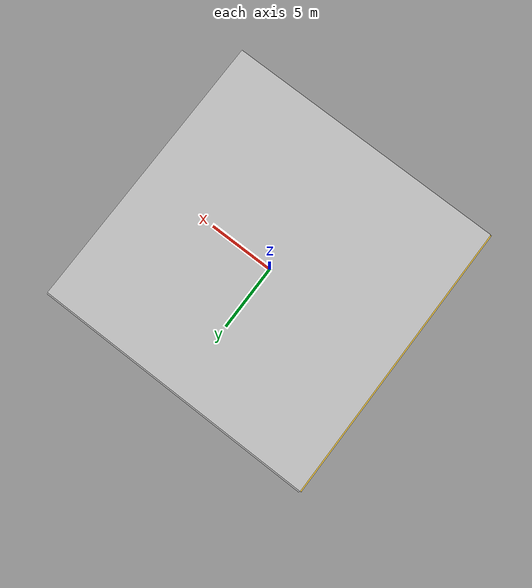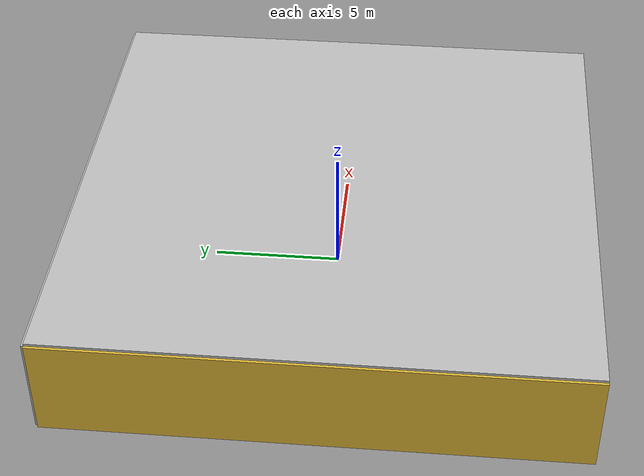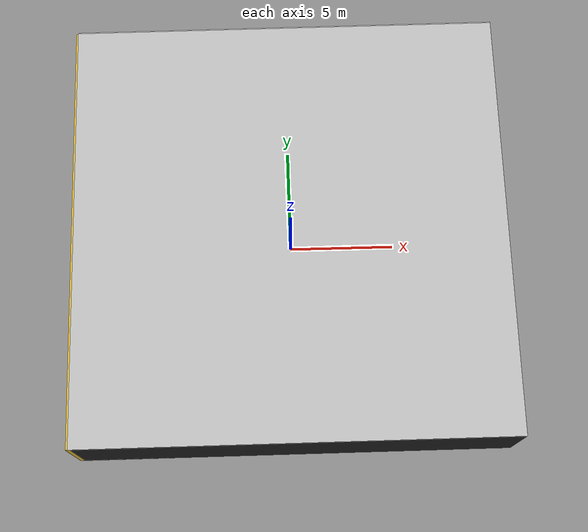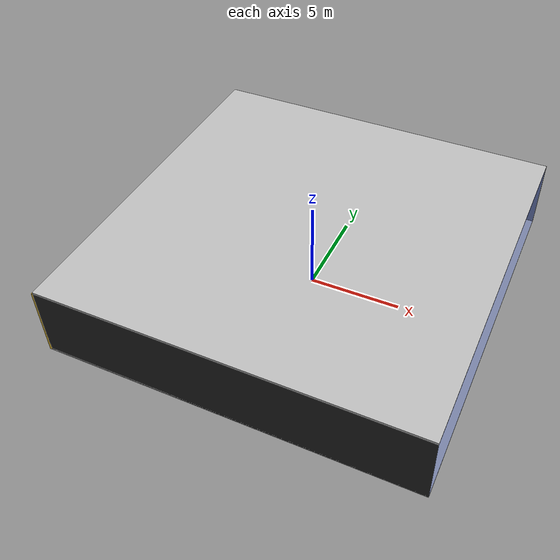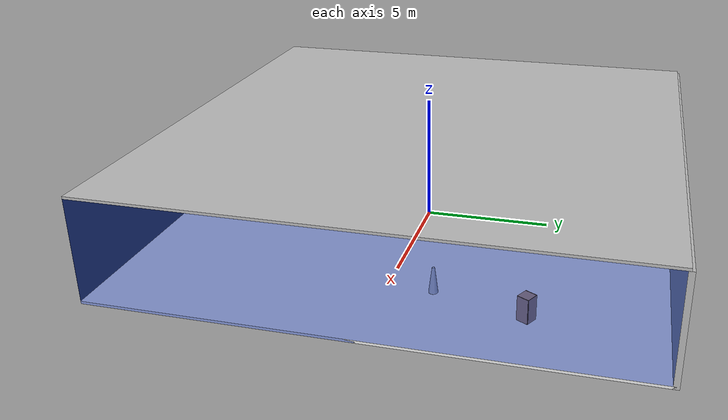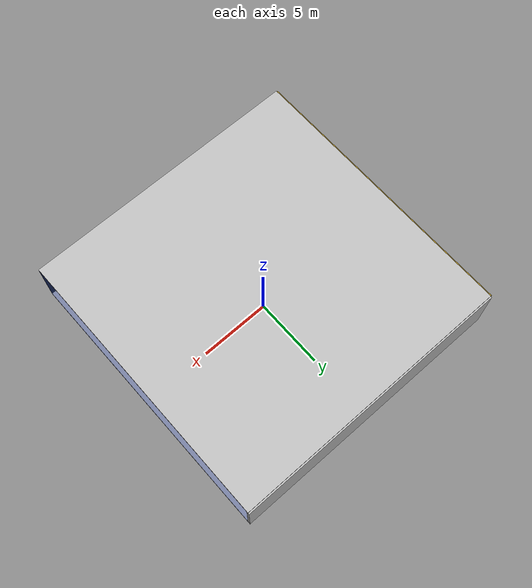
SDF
<sdf version="1.4">
 <world name="default">
  <physics type="ode">
   <max_step_size>0.001</max_step_size>
   <real_time_factor>1</real_time_factor>
   <real_time_update_rate>1000</real_time_update_rate>
   <gravity>0 0 -9.8</gravity>
  </physics>
  <scene><ambient>0.4 0.4 0.4 1</ambient><background>0.7 0.7 0.7 1</background><shadows>1</shadows></scene>
  <model name="Surrounding">
   <static>1</static>
   <link name="Ceiling">
    <collision name="Ceiling_Collision"><geometry><box><size>20 20 0.1</size></box></geometry></collision>
    <visual name="Ceiling_Visual">
     <geometry><box><size>20 20 0.1</size></box></geometry>
     <material>
      <script><uri>file://media/materials/scripts/gazebo.material</uri><name>Gazebo/JointAnchor</name></script>
     </material>
    </visual>
    <pose>0 0 4.05 0 0 0</pose>
   </link>
   <link name="Wall_South">
    <collision name="Wall_South_Collision">
     <geometry><box><size>20 0 4</size></box></geometry>
     <pose>0 0 2 0 -0 0</pose>
    </collision>
    <visual name="Wall_South_Visual">
     <pose>0 0 2 0 -0 0</pose>
     <geometry><box><size>20 0 4</size></box></geometry>
     <material>
      <script><uri>file://media/materials/scripts/gazebo.material</uri><name>Gazebo/Black</name></script>
     </material>
    </visual>
    <velocity_decay><linear>0</linear><angular>0</angular></velocity_decay>
    <pose>0 -10 0 0 -0 0</pose>
   </link>
   <link name="Wall_East">
    <collision name="Wall_21_Collision">
     <geometry><box><size>20 0 4</size></box></geometry>
     <pose>0 0 2 0 -0 0</pose>
    </collision>
    <visual name="Wall_21_Visual">
     <pose>0 0 2 0 -0 0</pose>
     <geometry><box><size>20 0 4</size></box></geometry>
     <material>
      <script><uri>file://media/materials/scripts/gazebo.material</uri><name>Gazebo/BlueTransparent</name></script>
     </material>
    </visual>
    <velocity_decay><linear>0</linear><angular>0</angular></velocity_decay>
    <pose>10 0 0 0 -0 1.5708</pose>
   </link>
   <link name="Wall_North">
    <collision name="Wall_22_Collision">
     <geometry><box><size>20 0.2 4</size></box></geometry>
     <pose>0 0 2 0 -0 0</pose>
    </collision>
    <visual name="Wall_22_Visual">
     <pose>0 0 2 0 -0 0</pose>
     <geometry><box><size>20 0.2 4</size></box></geometry>
     <material>
      <script><uri>file://media/materials/scripts/gazebo.material</uri><name>Gazebo/Pioneer2Body</name></script>
     </material>
    </visual>
    <velocity_decay><linear>0</linear><angular>0</angular></velocity_decay>
    <pose>0 10 0 0 -0 0</pose>
   </link>
   <link name="Wall_West">
    <collision name="Wall_23_Collision">
     <geometry><box><size>20 0.2 4</size></box></geometry>
     <pose>0 0 2 0 -0 0</pose>
    </collision>
    <visual name="Wall_23_Visual">
     <pose>0 0 2 0 -0 0</pose>
     <geometry><box><size>20 0.2 4</size></box></geometry>
     <material>
      <script><uri>file://media/materials/scripts/gazebo.material</uri><name>Gazebo/Gold</name></script>
     </material>
    </visual>
    <velocity_decay><linear>0</linear><angular>0</angular></velocity_decay>
    <pose>-10 0 0 0 0 -1.5708</pose>
   </link>
   <link name="Ground_link">
    <collision name="collision">
     <pose>0 0 .05 0 -0 0</pose>
     <geometry><box><size>20 20 0.1</size></box></geometry>
    </collision>
    <visual name="visual">
     <pose>0 0 .05 0 -0 0</pose>
     <geometry><box><size>20 20 0.1</size></box></geometry>
     <material>
      <script><uri>file://media/materials/scripts/gazebo.material</uri><name>Gazebo/White</name></script>
     </material>
    </visual>
   </link>
   <static>1</static>
  </model>
  <spherical_coordinates>
   <surface_model>EARTH_WGS84</surface_model>
   <latitude_deg>0</latitude_deg>
   <longitude_deg>0</longitude_deg>
   <elevation>0</elevation>
   <heading_deg>0</heading_deg>
  </spherical_coordinates>
  <light name="lightball_0" type="diffuse">
   <diffuse>0.8 0.8 0.8 1</diffuse>
   <specular>0.2 0.2 0.2 1</specular>
   <attenuation>
    <range>100</range>
    <constant>0.7</constant>
    <linear>0.01</linear>
    <quadratic>0.001</quadratic>
   </attenuation>
   <direction>-0.5 0.1 -0.9</direction>
   <pose>3.01395506233 -4.20817588152 3.11195708385 0 0 0</pose>
  </light>
  <light name="lightball_1" type="diffuse">
   <diffuse>0.8 0.8 0.8 1</diffuse>
   <specular>0.2 0.2 0.2 1</specular>
   <attenuation>
    <range>100</range>
    <constant>0.7</constant>
    <linear>0.01</linear>
    <quadratic>0.001</quadratic>
   </attenuation>
   <direction>-0.5 0.1 -0.9</direction>
   <pose>9.0937242143 4.74278751778 1.92562891523 0 0 0</pose>
  </light>
  <light name="lightball_2" type="diffuse">
   <diffuse>0.8 0.8 0.8 1</diffuse>
   <specular>0.2 0.2 0.2 1</specular>
   <attenuation>
    <range>100</range>
    <constant>0.7</constant>
    <linear>0.01</linear>
    <quadratic>0.001</quadratic>
   </attenuation>
   <direction>-0.5 0.1 -0.9</direction>
   <pose>8.76747268517 -6.21961790635 2.12507746406 0 0 0</pose>
  </light>
  <light name="lightball_3" type="diffuse">
   <diffuse>0.8 0.8 0.8 1</diffuse>
   <specular>0.2 0.2 0.2 1</specular>
   <attenuation>
    <range>100</range>
    <constant>0.7</constant>
    <linear>0.01</linear>
    <quadratic>0.001</quadratic>
   </attenuation>
   <direction>-0.5 0.1 -0.9</direction>
   <pose>-4.34344558216 -2.11320820244 3.28668872014 0 0 0</pose>
  </light>
  <light name="lightball_4" type="diffuse">
   <diffuse>0.8 0.8 0.8 1</diffuse>
   <specular>0.2 0.2 0.2 1</specular>
   <attenuation>
    <range>100</range>
    <constant>0.7</constant>
    <linear>0.01</linear>
    <quadratic>0.001</quadratic>
   </attenuation>
   <direction>-0.5 0.1 -0.9</direction>
   <pose>-3.07760071025 2.04764423739 3.55953980478 0 0 0</pose>
  </light>
  <light name="lightball_5" type="diffuse">
   <diffuse>0.8 0.8 0.8 1</diffuse>
   <specular>0.2 0.2 0.2 1</specular>
   <attenuation>
    <range>100</range>
    <constant>0.7</constant>
    <linear>0.01</linear>
    <quadratic>0.001</quadratic>
   </attenuation>
   <direction>-0.5 0.1 -0.9</direction>
   <pose>9.82549919484 -3.7843018136 1.31346069855 0 0 0</pose>
  </light>
  <include>
   <uri>model://robocup_3Dsim_goal</uri>
   <pose>-6.82385330194 7.31821961856 0 0 0 0.187319773151</pose>
  </include>
  <include>
   <uri>model://robocup_3Dsim_goal</uri>
   <pose>-3.54534807426 1.31590880503 0 0 0 1.19681465185</pose>
  </include>
  <include><uri>model://cabinet</uri><pose>1.51657202328 -0.781879774206 0 0 0 3.08498854977</pose></include>
  <include><uri>model://cabinet</uri><pose>0.610781732295 7.68302110166 0 0 0 2.21092975499</pose></include>
  <include>
   <uri>model://construction_cone</uri>
   <pose>6.46986366619 1.74775180863 0 0 0 1.09901403782</pose>
  </include>
  <include><uri>model://cabinet</uri><pose>7.43282066384 5.16957674931 0 0 0 1.06759948584</pose></include>
 </world>
</sdf>

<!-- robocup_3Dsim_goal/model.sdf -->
<sdf version="1.5">
  <model name="robocup_3d_goal">
    <static>true</static>
    <link name="left_post">
      <pose>0 1.05 0.45 0 0 0</pose>
      <collision name="collision">
        <geometry>
          <cylinder>
            <radius>0.05</radius>
            <length>0.9</length>
          </cylinder>
        </geometry>
      </collision>
      <visual name="visual">
        <geometry>
          <cylinder>
            <radius>0.05</radius>
            <length>0.9</length>
          </cylinder>
        </geometry>
        <material>
          <script>
            <uri>file://media/materials/scripts/gazebo.material</uri>
            <name>Gazebo/ZincYellow</name>
          </script>
        </material>
      </visual>
    </link>
    <link name="left_support_horiz_lower">
      <pose>0.30 1.05 0.01 0 0 0</pose>
      <collision name="collision">
        <geometry>
          <box>
            <size>0.50 0.02 0.02</size>
          </box>
        </geometry>
      </collision>
      <visual name="visual">
        <geometry>
          <box>
            <size>0.50 0.02 0.02</size>
          </box>
        </geometry>
        <material>
          <script>
            <uri>file://media/materials/scripts/gazebo.material</uri>
            <name>Gazebo/White</name>
          </script>
        </material>
      </visual>
    </link>
    <link name="left_support_horiz_upper">
      <pose>0.30 1.05 0.79 0 0 0</pose>
      <collision name="collision">
        <geometry>
          <box>
            <size>0.50 0.02 0.02</size>
          </box>
        </geometry>
      </collision>
      <visual name="visual">
        <geometry>
          <box>
            <size>0.50 0.02 0.02</size>
          </box>
        </geometry>
        <material>
          <script>
            <uri>file://media/materials/scripts/gazebo.material</uri>
            <name>Gazebo/White</name>
          </script>
        </material>
      </visual>
    </link>
    <link name="left_support_vertical">
      <pose>0.56 1.05 0.4 0 1.5708 0</pose>
      <collision name="collision">
        <geometry>
          <box>
            <size>0.80 0.02 0.02</size>
          </box>
        </geometry>
      </collision>
      <visual name="visual">
        <geometry>
          <box>
            <size>0.80 0.02 0.02</size>
          </box>
        </geometry>
        <material>
          <script>
            <uri>file://media/materials/scripts/gazebo.material</uri>
            <name>Gazebo/White</name>
          </script>
        </material>
      </visual>
    </link>
    <link name="right_support_horiz_lower">
      <pose>0.30 -1.05 0.01 0 0 0</pose>
      <collision name="collision">
        <geometry>
          <box>
            <size>0.50 0.02 0.02</size>
          </box>
        </geometry>
      </collision>
      <visual name="visual">
        <geometry>
          <box>
            <size>0.50 0.02 0.02</size>
          </box>
        </geometry>
        <material>
          <script>
            <uri>file://media/materials/scripts/gazebo.material</uri>
            <name>Gazebo/White</name>
          </script>
        </material>
      </visual>
    </link>
    <link name="right_support_horiz_upper">
      <pose>0.30 -1.05 0.79 0 0 0</pose>
      <collision name="collision">
        <geometry>
          <box>
            <size>0.50 0.02 0.02</size>
          </box>
        </geometry>
      </collision>
      <visual name="visual">
        <geometry>
          <box>
            <size>0.50 0.02 0.02</size>
          </box>
        </geometry>
        <material>
          <script>
            <uri>file://media/materials/scripts/gazebo.material</uri>
            <name>Gazebo/White</name>
          </script>
        </material>
      </visual>
    </link>
    <link name="right_support_vertical">
      <pose>0.56 -1.05 0.4 0 1.5708 0</pose>
      <collision name="collision">
        <geometry>
          <box>
            <size>0.80 0.02 0.02</size>
          </box>
        </geometry>
      </collision>
      <visual name="visual">
        <geometry>
          <box>
            <size>0.80 0.02 0.02</size>
          </box>
        </geometry>
        <material>
          <script>
            <uri>file://media/materials/scripts/gazebo.material</uri>
            <name>Gazebo/White</name>
          </script>
        </material>
      </visual>
    </link>
    <link name="center_support_horiz_lower">
      <pose>0.56 0 0.01 0 1.5708 0</pose>
      <collision name="collision">
        <geometry>
          <box>
            <size>0.02 2.08 0.02</size>
          </box>
        </geometry>
      </collision>
      <visual name="visual">
        <geometry>
          <box>
            <size>0.02 2.08 0.02</size>
          </box>
        </geometry>
        <material>
          <script>
            <uri>file://media/materials/scripts/gazebo.material</uri>
            <name>Gazebo/White</name>
          </script>
        </material>
      </visual>
    </link>
    <link name="center_support_horiz_upper">
      <pose>0.56 0 0.79 0 1.5708 0</pose>
      <collision name="collision">
        <geometry>
          <box>
            <size>0.02 2.08 0.02</size>
          </box>
        </geometry>
      </collision>
      <visual name="visual">
        <geometry>
          <box>
            <size>0.02 2.08 0.02</size>
          </box>
        </geometry>
        <material>
          <script>
            <uri>file://media/materials/scripts/gazebo.material</uri>
            <name>Gazebo/White</name>
          </script>
        </material>
      </visual>
    </link>
    <link name="right_post">
      <pose>0 -1.05 0.45 0 0 0</pose>
      <collision name="collision">
        <geometry>
          <cylinder>
            <radius>0.05</radius>
            <length>0.9</length>
          </cylinder>
        </geometry>
      </collision>
      <visual name="visual">
        <geometry>
          <cylinder>
            <radius>0.05</radius>
            <length>0.9</length>
          </cylinder>
        </geometry>
        <material>
          <script>
            <uri>file://media/materials/scripts/gazebo.material</uri>
            <name>Gazebo/ZincYellow</name>
          </script>
        </material>
      </visual>
    </link>
    <link name="crossbar">
      <pose>0 0 0.85 1.57 1.57 0</pose>
      <collision name="collision">
        <geometry>
          <cylinder>
            <radius>0.05</radius>
            <length>2.0</length>
          </cylinder>
        </geometry>
      </collision>
      <visual name="visual">
        <geometry>
          <cylinder>
            <radius>0.05</radius>
            <length>2.0</length>
          </cylinder>
        </geometry>
        <material>
          <script>
            <uri>file://media/materials/scripts/gazebo.material</uri>
            <name>Gazebo/ZincYellow</name>
          </script>
        </material>
      </visual>
    </link>
    <link name="center_net">
      <pose>0.56 0 0.40 0 0 0</pose>
      <collision name="collision">
        <geometry>
          <box>
            <size>0.01 2.1 0.80</size>
          </box>
        </geometry>
      </collision>
      <visual name="visual">
        <geometry>
          <box>
            <size>0.01 2.1 0.80</size>
          </box>
        </geometry>
        <material>
          <script>
            <uri>model://../model_source/models/robocup09_spl_field/materials/scripts/</uri>
            <uri>model://../model_source/models/robocup09_spl_field/materials/textures/</uri>
            <name>RoboCup/Net</name>
          </script>
        </material>
      </visual>
    </link>
    <link name="left_net">
      <pose>0.30 1.05 0.40 0 0 0</pose>
      <collision name="collision">
        <geometry>
          <box>
            <size>0.50 0.01 0.76</size>
          </box>
        </geometry>
      </collision>
      <visual name="visual">
        <geometry>
          <box>
            <size>0.50 0.01 0.76</size>
          </box>
        </geometry>
        <material>
          <script>
            <uri>model://../model_source/models/robocup09_spl_field/materials/scripts/</uri>
            <uri>model://../model_source/models/robocup09_spl_field/materials/textures/</uri>
            <name>RoboCup/Net</name>
          </script>
        </material>
      </visual>
    </link>
    <link name="right_net">
      <pose>0.30 -1.05 0.40 0 0 0</pose>
      <collision name="collision">
        <geometry>
          <box>
            <size>0.50 0.01 0.76</size>
          </box>
        </geometry>
      </collision>
      <visual name="visual">
        <geometry>
          <box>
            <size>0.50 0.01 0.76</size>
          </box>
        </geometry>
        <material>
          <script>
            <uri>model://../model_source/models/robocup09_spl_field/materials/scripts/</uri>
            <uri>model://../model_source/models/robocup09_spl_field/materials/textures/</uri>
            <name>RoboCup/Net</name>
          </script>
        </material>
      </visual>
    </link>
  </model>
</sdf>

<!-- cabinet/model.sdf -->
<sdf version="1.5">
  <model name="cabinet">
    <static>true</static>
    <link name="cabinet_bottom_plate">
      <inertial>
        <pose>0 0 -1 0 0 0</pose>
        <inertia>
          <ixx>2.050000</ixx>
          <ixy>0</ixy>
          <ixz>0</ixz>
          <iyy>2.050000</iyy>
          <iyz>0</iyz>
          <izz>2.050000</izz>
        </inertia>
        <mass>25.000000</mass>
      </inertial>
      <collision name="cabinet_bottom_plate_geom">
        <pose>0 0 0.010000 0 0 0</pose>
        <geometry>
          <box>
            <size>0.450000 0.450000 0.020000</size>
          </box>
        </geometry>
      </collision>
      <visual name="cabinet_bottom_plate_geom_visual">
        <pose>0 0 0.010000 0 0 0</pose>
        <geometry>
          <box>
            <size>0.450000 0.450000 0.020000</size>
          </box>
        </geometry>
        <material>
          <script>
            <uri>model://media/materials/scripts/gazebo.material</uri>
            <name>Gazebo/Wood</name>
          </script>
        </material>
      </visual>
      <collision name="cabinet_bottom_plate_geom_cabinet_back_plate">
        <pose>0.235000 0 0.510000 0 0 0</pose>
        <geometry>
          <box>
            <size>0.020000 0.450000 1.020000</size>
          </box>
        </geometry>
      </collision>
      <visual name="cabinet_bottom_plate_geom_cabinet_back_plate_visual">
        <pose>0.235000 0 0.510000 0 0 0</pose>
        <geometry>
          <box>
            <size>0.020000 0.450000 1.020000</size>
          </box>
        </geometry>
        <material>
          <script>
            <uri>model://media/materials/scripts/gazebo.material</uri>
            <name>Gazebo/Wood</name>
          </script>
        </material>
      </visual>
      <collision name="cabinet_bottom_plate_geom_cabinet_left_plate">
        <pose>0 0.235000 0.510000 0 0 0</pose>
        <geometry>
          <box>
            <size>0.450000 0.020000 1.020000</size>
          </box>
        </geometry>
      </collision>
      <visual name="cabinet_bottom_plate_geom_cabinet_left_plate_visual">
        <pose>0 0.235000 0.510000 0 0 0</pose>
        <geometry>
          <box>
            <size>0.450000 0.020000 1.020000</size>
          </box>
        </geometry>
        <material>
          <script>
            <uri>model://media/materials/scripts/gazebo.material</uri>
            <name>Gazebo/Wood</name>
          </script>
        </material>
      </visual>
      <collision name="cabinet_bottom_plate_geom_cabinet_middle_plate">
        <pose>0 0 0.510000 0 0 0</pose>
        <geometry>
          <box>
            <size>0.450000 0.450000 0.020000</size>
          </box>
        </geometry>
      </collision>
      <visual name="cabinet_bottom_plate_geom_cabinet_middle_plate_visual">
        <pose>0 0 0.510000 0 0 0</pose>
        <geometry>
          <box>
            <size>0.450000 0.450000 0.020000</size>
          </box>
        </geometry>
        <material>
          <script>
            <uri>model://media/materials/scripts/gazebo.material</uri>
            <name>Gazebo/Wood</name>
          </script>
        </material>
      </visual>
      <collision name="cabinet_bottom_plate_geom_cabinet_right_plate">
        <pose>0 -0.235000 0.510000 0 0 0</pose>
        <geometry>
          <box>
            <size>0.450000 0.020000 1.020000</size>
          </box>
        </geometry>
      </collision>
      <visual name="cabinet_bottom_plate_geom_cabinet_right_plate_visual">
        <pose>0 -0.235000 0.510000 0 0 0</pose>
        <geometry>
          <box>
            <size>0.450000 0.020000 1.020000</size>
          </box>
        </geometry>
        <material>
          <script>
            <uri>model://media/materials/scripts/gazebo.material</uri>
            <name>Gazebo/Wood</name>
          </script>
        </material>
      </visual>
      <collision name="cabinet_bottom_plate_geom_cabinet_top_plate">
        <pose>0 0 1.010000 0 0 0</pose>
        <geometry>
          <box>
            <size>0.450000 0.450000 0.020000</size>
          </box>
        </geometry>
      </collision>
      <visual name="cabinet_bottom_plate_geom_cabinet_top_plate_visual">
        <pose>0 0 1.010000 0 0 0</pose>
        <geometry>
          <box>
            <size>0.450000 0.450000 0.020000</size>
          </box>
        </geometry>
        <material>
          <script>
            <uri>model://media/materials/scripts/gazebo.material</uri>
            <name>Gazebo/Wood</name>
          </script>
        </material>
      </visual>
    </link>
  </model>
</sdf>

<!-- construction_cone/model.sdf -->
<sdf version="1.5">
  <model name="Construction Cone">
    <link name="link">
      <collision name="collision">
        <geometry>
          <mesh>
            <scale>10 10 10</scale>
            <uri>file://isr-testbed/construction_cone/meshes/construction_cone.dae</uri>
          </mesh>
        </geometry>
      </collision>
      <visual name="visual">
        <geometry>
          <mesh>
            <scale>10 10 10</scale>
            <uri>file://isr-testbed/construction_cone/meshes/construction_cone.dae</uri>
          </mesh>
        </geometry>
      </visual>
    </link>
  </model>
</sdf>
